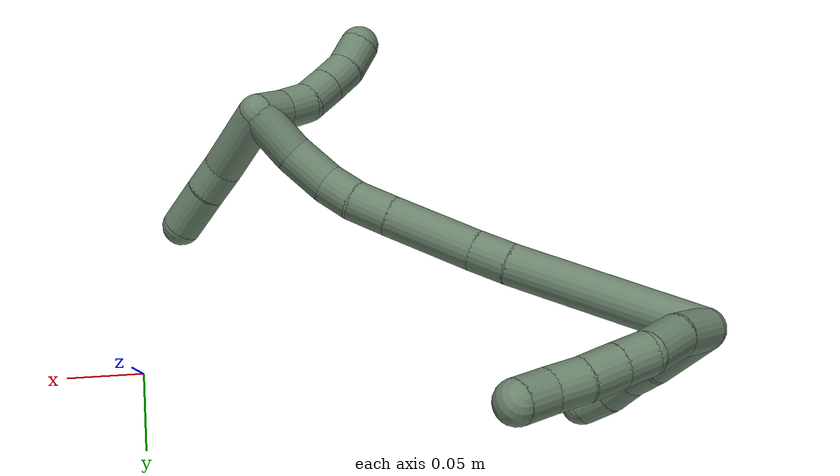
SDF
<sdf version="1.7">
 <world name="default">
  <model name="17">
   <static>0</static>
   <link name="17">
    <collision name="collision-cylinder-e_1_2_8">
     <pose>0.012726 0.006938 0.007169 -0.769051 0.905923 -0.388938</pose>
     <geometry><cylinder><radius>0.0125</radius><length>0.03234</length></cylinder></geometry>
     <surface>
      <friction><ode><mu>1.16</mu><mu2>1.16</mu2><slip1>0</slip1><slip2>0</slip2></ode></friction>
      <contact><ode><kp>1e+06</kp><kd>1</kd><max_vel>0</max_vel><min_depth>0.001</min_depth></ode></contact>
     </surface>
    </collision>
    <visual name="visual-cylinder-e_1_2_8">
     <pose>0.012726 0.006938 0.007169 -0.769051 0.905923 -0.388938</pose>
     <geometry><cylinder><radius>0.0125</radius><length>0.03234</length></cylinder></geometry>
     <material><ambient>0.415686 0.509804 0.423529 1</ambient></material>
    </visual>
    <collision name="collision-cylinder-e_2_8_9">
     <pose>0.037379 0.022709 0.019544 -1.03818 0.860744 -0.513026</pose>
     <geometry><cylinder><radius>0.0125</radius><length>0.031456</length></cylinder></geometry>
     <surface>
      <friction><ode><mu>1.16</mu><mu2>1.16</mu2><slip1>0</slip1><slip2>0</slip2></ode></friction>
      <contact><ode><kp>1e+06</kp><kd>1</kd><max_vel>0</max_vel><min_depth>0.001</min_depth></ode></contact>
     </surface>
    </collision>
    <visual name="visual-cylinder-e_2_8_9">
     <pose>0.037379 0.022709 0.019544 -1.03818 0.860744 -0.513026</pose>
     <geometry><cylinder><radius>0.0125</radius><length>0.031456</length></cylinder></geometry>
     <material><ambient>0.415686 0.509804 0.423529 1</ambient></material>
    </visual>
    <collision name="collision-cylinder-e_3_9_10">
     <pose>0.058567 0.036169 0.025207 -1.47228 1.10542 -1.01927</pose>
     <geometry><cylinder><radius>0.0125</radius><length>0.020727</length></cylinder></geometry>
     <surface>
      <friction><ode><mu>1.16</mu><mu2>1.16</mu2><slip1>0</slip1><slip2>0</slip2></ode></friction>
      <contact><ode><kp>1e+06</kp><kd>1</kd><max_vel>0</max_vel><min_depth>0.001</min_depth></ode></contact>
     </surface>
    </collision>
    <visual name="visual-cylinder-e_3_9_10">
     <pose>0.058567 0.036169 0.025207 -1.47228 1.10542 -1.01927</pose>
     <geometry><cylinder><radius>0.0125</radius><length>0.020727</length></cylinder></geometry>
     <material><ambient>0.415686 0.509804 0.423529 1</ambient></material>
    </visual>
    <collision name="collision-cylinder-e_4_10_11">
     <pose>0.077874 0.046057 0.026269 -1.45641 1.08582 -0.987225</pose>
     <geometry><cylinder><radius>0.0125</radius><length>0.022712</length></cylinder></geometry>
     <surface>
      <friction><ode><mu>1.16</mu><mu2>1.16</mu2><slip1>0</slip1><slip2>0</slip2></ode></friction>
      <contact><ode><kp>1e+06</kp><kd>1</kd><max_vel>0</max_vel><min_depth>0.001</min_depth></ode></contact>
     </surface>
    </collision>
    <visual name="visual-cylinder-e_4_10_11">
     <pose>0.077874 0.046057 0.026269 -1.45641 1.08582 -0.987225</pose>
     <geometry><cylinder><radius>0.0125</radius><length>0.022712</length></cylinder></geometry>
     <material><ambient>0.415686 0.509804 0.423529 1</ambient></material>
    </visual>
    <collision name="collision-cylinder-e_5_11_12">
     <pose>0.097963 0.055435 0.027067 -1.52384 1.18118 -1.13812</pose>
     <geometry><cylinder><radius>0.0125</radius><length>0.021712</length></cylinder></geometry>
     <surface>
      <friction><ode><mu>1.16</mu><mu2>1.16</mu2><slip1>0</slip1><slip2>0</slip2></ode></friction>
      <contact><ode><kp>1e+06</kp><kd>1</kd><max_vel>0</max_vel><min_depth>0.001</min_depth></ode></contact>
     </surface>
    </collision>
    <visual name="visual-cylinder-e_5_11_12">
     <pose>0.097963 0.055435 0.027067 -1.52384 1.18118 -1.13812</pose>
     <geometry><cylinder><radius>0.0125</radius><length>0.021712</length></cylinder></geometry>
     <material><ambient>0.415686 0.509804 0.423529 1</ambient></material>
    </visual>
    <collision name="collision-cylinder-e_6_12_6">
     <pose>0.117284 0.064158 0.029137 -1.18366 1.07884 -0.765166</pose>
     <geometry><cylinder><radius>0.0125</radius><length>0.021053</length></cylinder></geometry>
     <surface>
      <friction><ode><mu>1.16</mu><mu2>1.16</mu2><slip1>0</slip1><slip2>0</slip2></ode></friction>
      <contact><ode><kp>1e+06</kp><kd>1</kd><max_vel>0</max_vel><min_depth>0.001</min_depth></ode></contact>
     </surface>
    </collision>
    <visual name="visual-cylinder-e_6_12_6">
     <pose>0.117284 0.064158 0.029137 -1.18366 1.07884 -0.765166</pose>
     <geometry><cylinder><radius>0.0125</radius><length>0.021053</length></cylinder></geometry>
     <material><ambient>0.415686 0.509804 0.423529 1</ambient></material>
    </visual>
    <collision name="collision-cylinder-e_1_2_13">
     <pose>0.00736 0.002769 -0.018309 -2.99151 0.378343 -2.39324</pose>
     <geometry><cylinder><radius>0.0125</radius><length>0.039852</length></cylinder></geometry>
     <surface>
      <friction><ode><mu>1.16</mu><mu2>1.16</mu2><slip1>0</slip1><slip2>0</slip2></ode></friction>
      <contact><ode><kp>1e+06</kp><kd>1</kd><max_vel>0</max_vel><min_depth>0.001</min_depth></ode></contact>
     </surface>
    </collision>
    <visual name="visual-cylinder-e_1_2_13">
     <pose>0.00736 0.002769 -0.018309 -2.99151 0.378343 -2.39324</pose>
     <geometry><cylinder><radius>0.0125</radius><length>0.039852</length></cylinder></geometry>
     <material><ambient>0.415686 0.509804 0.423529 1</ambient></material>
    </visual>
    <collision name="collision-cylinder-e_2_13_14">
     <pose>0.017763 0.00535 -0.0462 3.12207 0.307349 3.01569</pose>
     <geometry><cylinder><radius>0.0125</radius><length>0.020111</length></cylinder></geometry>
     <surface>
      <friction><ode><mu>1.16</mu><mu2>1.16</mu2><slip1>0</slip1><slip2>0</slip2></ode></friction>
      <contact><ode><kp>1e+06</kp><kd>1</kd><max_vel>0</max_vel><min_depth>0.001</min_depth></ode></contact>
     </surface>
    </collision>
    <visual name="visual-cylinder-e_2_13_14">
     <pose>0.017763 0.00535 -0.0462 3.12207 0.307349 3.01569</pose>
     <geometry><cylinder><radius>0.0125</radius><length>0.020111</length></cylinder></geometry>
     <material><ambient>0.415686 0.509804 0.423529 1</ambient></material>
    </visual>
    <collision name="collision-cylinder-e_3_14_15">
     <pose>0.023643 0.006281 -0.065319 -3.02488 0.287362 -2.37404</pose>
     <geometry><cylinder><radius>0.0125</radius><length>0.020025</length></cylinder></geometry>
     <surface>
      <friction><ode><mu>1.16</mu><mu2>1.16</mu2><slip1>0</slip1><slip2>0</slip2></ode></friction>
      <contact><ode><kp>1e+06</kp><kd>1</kd><max_vel>0</max_vel><min_depth>0.001</min_depth></ode></contact>
     </surface>
    </collision>
    <visual name="visual-cylinder-e_3_14_15">
     <pose>0.023643 0.006281 -0.065319 -3.02488 0.287362 -2.37404</pose>
     <geometry><cylinder><radius>0.0125</radius><length>0.020025</length></cylinder></geometry>
     <material><ambient>0.415686 0.509804 0.423529 1</ambient></material>
    </visual>
    <collision name="collision-cylinder-e_4_15_5">
     <pose>0.031801 0.007994 -0.083309 -3.07135 0.560615 -2.8987</pose>
     <geometry><cylinder><radius>0.0125</radius><length>0.020012</length></cylinder></geometry>
     <surface>
      <friction><ode><mu>1.16</mu><mu2>1.16</mu2><slip1>0</slip1><slip2>0</slip2></ode></friction>
      <contact><ode><kp>1e+06</kp><kd>1</kd><max_vel>0</max_vel><min_depth>0.001</min_depth></ode></contact>
     </surface>
    </collision>
    <visual name="visual-cylinder-e_4_15_5">
     <pose>0.031801 0.007994 -0.083309 -3.07135 0.560615 -2.8987</pose>
     <geometry><cylinder><radius>0.0125</radius><length>0.020012</length></cylinder></geometry>
     <material><ambient>0.415686 0.509804 0.423529 1</ambient></material>
    </visual>
    <collision name="collision-cylinder-e_1_2_16">
     <pose>0.048163 -0.025795 -0.019559 2.21956 0.979009 1.64077</pose>
     <geometry><cylinder><radius>0.0125</radius><length>0.116062</length></cylinder></geometry>
     <surface>
      <friction><ode><mu>1.16</mu><mu2>1.16</mu2><slip1>0</slip1><slip2>0</slip2></ode></friction>
      <contact><ode><kp>1e+06</kp><kd>1</kd><max_vel>0</max_vel><min_depth>0.001</min_depth></ode></contact>
     </surface>
    </collision>
    <visual name="visual-cylinder-e_1_2_16">
     <pose>0.048163 -0.025795 -0.019559 2.21956 0.979009 1.64077</pose>
     <geometry><cylinder><radius>0.0125</radius><length>0.116062</length></cylinder></geometry>
     <material><ambient>0.415686 0.509804 0.423529 1</ambient></material>
    </visual>
    <collision name="collision-cylinder-e_2_16_17">
     <pose>0.105319 -0.057321 -0.043289 2.19991 0.903378 1.52276</pose>
     <geometry><cylinder><radius>0.0125</radius><length>0.022901</length></cylinder></geometry>
     <surface>
      <friction><ode><mu>1.16</mu><mu2>1.16</mu2><slip1>0</slip1><slip2>0</slip2></ode></friction>
      <contact><ode><kp>1e+06</kp><kd>1</kd><max_vel>0</max_vel><min_depth>0.001</min_depth></ode></contact>
     </surface>
    </collision>
    <visual name="visual-cylinder-e_2_16_17">
     <pose>0.105319 -0.057321 -0.043289 2.19991 0.903378 1.52276</pose>
     <geometry><cylinder><radius>0.0125</radius><length>0.022901</length></cylinder></geometry>
     <material><ambient>0.415686 0.509804 0.423529 1</ambient></material>
    </visual>
    <collision name="collision-cylinder-e_3_17_18">
     <pose>0.137319 -0.076411 -0.0551 2.09032 0.981244 1.48849</pose>
     <geometry><cylinder><radius>0.0125</radius><length>0.055358</length></cylinder></geometry>
     <surface>
      <friction><ode><mu>1.16</mu><mu2>1.16</mu2><slip1>0</slip1><slip2>0</slip2></ode></friction>
      <contact><ode><kp>1e+06</kp><kd>1</kd><max_vel>0</max_vel><min_depth>0.001</min_depth></ode></contact>
     </surface>
    </collision>
    <visual name="visual-cylinder-e_3_17_18">
     <pose>0.137319 -0.076411 -0.0551 2.09032 0.981244 1.48849</pose>
     <geometry><cylinder><radius>0.0125</radius><length>0.055358</length></cylinder></geometry>
     <material><ambient>0.415686 0.509804 0.423529 1</ambient></material>
    </visual>
    <collision name="collision-cylinder-e_4_18_19">
     <pose>0.170624 -0.09579 -0.065928 2.05766 0.98636 1.45749</pose>
     <geometry><cylinder><radius>0.0125</radius><length>0.024694</length></cylinder></geometry>
     <surface>
      <friction><ode><mu>1.16</mu><mu2>1.16</mu2><slip1>0</slip1><slip2>0</slip2></ode></friction>
      <contact><ode><kp>1e+06</kp><kd>1</kd><max_vel>0</max_vel><min_depth>0.001</min_depth></ode></contact>
     </surface>
    </collision>
    <visual name="visual-cylinder-e_4_18_19">
     <pose>0.170624 -0.09579 -0.065928 2.05766 0.98636 1.45749</pose>
     <geometry><cylinder><radius>0.0125</radius><length>0.024694</length></cylinder></geometry>
     <material><ambient>0.415686 0.509804 0.423529 1</ambient></material>
    </visual>
    <collision name="collision-cylinder-e_5_19_20">
     <pose>0.188477 -0.10824 -0.071467 1.92153 0.834658 1.13056</pose>
     <geometry><cylinder><radius>0.0125</radius><length>0.020391</length></cylinder></geometry>
     <surface>
      <friction><ode><mu>1.16</mu><mu2>1.16</mu2><slip1>0</slip1><slip2>0</slip2></ode></friction>
      <contact><ode><kp>1e+06</kp><kd>1</kd><max_vel>0</max_vel><min_depth>0.001</min_depth></ode></contact>
     </surface>
    </collision>
    <visual name="visual-cylinder-e_5_19_20">
     <pose>0.188477 -0.10824 -0.071467 1.92153 0.834658 1.13056</pose>
     <geometry><cylinder><radius>0.0125</radius><length>0.020391</length></cylinder></geometry>
     <material><ambient>0.415686 0.509804 0.423529 1</ambient></material>
    </visual>
    <collision name="collision-cylinder-e_6_20_21">
     <pose>0.206881 -0.123907 -0.073605 1.54769 0.865251 0.847794</pose>
     <geometry><cylinder><radius>0.0125</radius><length>0.028503</length></cylinder></geometry>
     <surface>
      <friction><ode><mu>1.16</mu><mu2>1.16</mu2><slip1>0</slip1><slip2>0</slip2></ode></friction>
      <contact><ode><kp>1e+06</kp><kd>1</kd><max_vel>0</max_vel><min_depth>0.001</min_depth></ode></contact>
     </surface>
    </collision>
    <visual name="visual-cylinder-e_6_20_21">
     <pose>0.206881 -0.123907 -0.073605 1.54769 0.865251 0.847794</pose>
     <geometry><cylinder><radius>0.0125</radius><length>0.028503</length></cylinder></geometry>
     <material><ambient>0.415686 0.509804 0.423529 1</ambient></material>
    </visual>
    <collision name="collision-cylinder-e_7_21_1">
     <pose>0.229646 -0.142895 -0.068873 1.13681 0.836996 0.553587</pose>
     <geometry><cylinder><radius>0.0125</radius><length>0.03209</length></cylinder></geometry>
     <surface>
      <friction><ode><mu>1.16</mu><mu2>1.16</mu2><slip1>0</slip1><slip2>0</slip2></ode></friction>
      <contact><ode><kp>1e+06</kp><kd>1</kd><max_vel>0</max_vel><min_depth>0.001</min_depth></ode></contact>
     </surface>
    </collision>
    <visual name="visual-cylinder-e_7_21_1">
     <pose>0.229646 -0.142895 -0.068873 1.13681 0.836996 0.553587</pose>
     <geometry><cylinder><radius>0.0125</radius><length>0.03209</length></cylinder></geometry>
     <material><ambient>0.415686 0.509804 0.423529 1</ambient></material>
    </visual>
    <collision name="collision-cylinder-e_1_1_22">
     <pose>0.23354 -0.157647 -0.067616 2.14848 -0.930913 -1.49503</pose>
     <geometry><cylinder><radius>0.0125</radius><length>0.02</length></cylinder></geometry>
     <surface>
      <friction><ode><mu>1.16</mu><mu2>1.16</mu2><slip1>0</slip1><slip2>0</slip2></ode></friction>
      <contact><ode><kp>1e+06</kp><kd>1</kd><max_vel>0</max_vel><min_depth>0.001</min_depth></ode></contact>
     </surface>
    </collision>
    <visual name="visual-cylinder-e_1_1_22">
     <pose>0.23354 -0.157647 -0.067616 2.14848 -0.930913 -1.49503</pose>
     <geometry><cylinder><radius>0.0125</radius><length>0.02</length></cylinder></geometry>
     <material><ambient>0.415686 0.509804 0.423529 1</ambient></material>
    </visual>
    <collision name="collision-cylinder-e_2_22_23">
     <pose>0.217175 -0.167911 -0.072519 1.87329 -0.986945 -1.26283</pose>
     <geometry><cylinder><radius>0.0125</radius><length>0.02</length></cylinder></geometry>
     <surface>
      <friction><ode><mu>1.16</mu><mu2>1.16</mu2><slip1>0</slip1><slip2>0</slip2></ode></friction>
      <contact><ode><kp>1e+06</kp><kd>1</kd><max_vel>0</max_vel><min_depth>0.001</min_depth></ode></contact>
     </surface>
    </collision>
    <visual name="visual-cylinder-e_2_22_23">
     <pose>0.217175 -0.167911 -0.072519 1.87329 -0.986945 -1.26283</pose>
     <geometry><cylinder><radius>0.0125</radius><length>0.02</length></cylinder></geometry>
     <material><ambient>0.415686 0.509804 0.423529 1</ambient></material>
    </visual>
    <collision name="collision-cylinder-e_3_23_24">
     <pose>0.202506 -0.180875 -0.074977 1.67641 -0.68485 -0.754543</pose>
     <geometry><cylinder><radius>0.0125</radius><length>0.02</length></cylinder></geometry>
     <surface>
      <friction><ode><mu>1.16</mu><mu2>1.16</mu2><slip1>0</slip1><slip2>0</slip2></ode></friction>
      <contact><ode><kp>1e+06</kp><kd>1</kd><max_vel>0</max_vel><min_depth>0.001</min_depth></ode></contact>
     </surface>
    </collision>
    <visual name="visual-cylinder-e_3_23_24">
     <pose>0.202506 -0.180875 -0.074977 1.67641 -0.68485 -0.754543</pose>
     <geometry><cylinder><radius>0.0125</radius><length>0.02</length></cylinder></geometry>
     <material><ambient>0.415686 0.509804 0.423529 1</ambient></material>
    </visual>
    <collision name="collision-cylinder-e_4_24_25">
     <pose>0.189812 -0.196284 -0.075582 1.54336 -0.690401 -0.673112</pose>
     <geometry><cylinder><radius>0.0125</radius><length>0.02</length></cylinder></geometry>
     <surface>
      <friction><ode><mu>1.16</mu><mu2>1.16</mu2><slip1>0</slip1><slip2>0</slip2></ode></friction>
      <contact><ode><kp>1e+06</kp><kd>1</kd><max_vel>0</max_vel><min_depth>0.001</min_depth></ode></contact>
     </surface>
    </collision>
    <visual name="visual-cylinder-e_4_24_25">
     <pose>0.189812 -0.196284 -0.075582 1.54336 -0.690401 -0.673112</pose>
     <geometry><cylinder><radius>0.0125</radius><length>0.02</length></cylinder></geometry>
     <material><ambient>0.415686 0.509804 0.423529 1</ambient></material>
    </visual>
    <collision name="collision-cylinder-e_5_25_4">
     <pose>0.179175 -0.212879 -0.073701 1.38504 -0.441038 -0.367725</pose>
     <geometry><cylinder><radius>0.0125</radius><length>0.02</length></cylinder></geometry>
     <surface>
      <friction><ode><mu>1.16</mu><mu2>1.16</mu2><slip1>0</slip1><slip2>0</slip2></ode></friction>
      <contact><ode><kp>1e+06</kp><kd>1</kd><max_vel>0</max_vel><min_depth>0.001</min_depth></ode></contact>
     </surface>
    </collision>
    <visual name="visual-cylinder-e_5_25_4">
     <pose>0.179175 -0.212879 -0.073701 1.38504 -0.441038 -0.367725</pose>
     <geometry><cylinder><radius>0.0125</radius><length>0.02</length></cylinder></geometry>
     <material><ambient>0.415686 0.509804 0.423529 1</ambient></material>
    </visual>
    <collision name="collision-cylinder-e_1_1_26">
     <pose>0.248248 -0.146621 -0.086462 -2.8756 0.283914 -1.63676</pose>
     <geometry><cylinder><radius>0.0125</radius><length>0.047737</length></cylinder></geometry>
     <surface>
      <friction><ode><mu>1.16</mu><mu2>1.16</mu2><slip1>0</slip1><slip2>0</slip2></ode></friction>
      <contact><ode><kp>1e+06</kp><kd>1</kd><max_vel>0</max_vel><min_depth>0.001</min_depth></ode></contact>
     </surface>
    </collision>
    <visual name="visual-cylinder-e_1_1_26">
     <pose>0.248248 -0.146621 -0.086462 -2.8756 0.283914 -1.63676</pose>
     <geometry><cylinder><radius>0.0125</radius><length>0.047737</length></cylinder></geometry>
     <material><ambient>0.415686 0.509804 0.423529 1</ambient></material>
    </visual>
    <collision name="collision-cylinder-e_2_26_27">
     <pose>0.258908 -0.136537 -0.117333 -2.70766 0.390332 -1.46206</pose>
     <geometry><cylinder><radius>0.0125</radius><length>0.020889</length></cylinder></geometry>
     <surface>
      <friction><ode><mu>1.16</mu><mu2>1.16</mu2><slip1>0</slip1><slip2>0</slip2></ode></friction>
      <contact><ode><kp>1e+06</kp><kd>1</kd><max_vel>0</max_vel><min_depth>0.001</min_depth></ode></contact>
     </surface>
    </collision>
    <visual name="visual-cylinder-e_2_26_27">
     <pose>0.258908 -0.136537 -0.117333 -2.70766 0.390332 -1.46206</pose>
     <geometry><cylinder><radius>0.0125</radius><length>0.020889</length></cylinder></geometry>
     <material><ambient>0.415686 0.509804 0.423529 1</ambient></material>
    </visual>
    <collision name="collision-cylinder-e_3_27_3">
     <pose>0.268298 -0.127062 -0.139787 -2.765 0.352532 -1.50334</pose>
     <geometry><cylinder><radius>0.0125</radius><length>0.031374</length></cylinder></geometry>
     <surface>
      <friction><ode><mu>1.16</mu><mu2>1.16</mu2><slip1>0</slip1><slip2>0</slip2></ode></friction>
      <contact><ode><kp>1e+06</kp><kd>1</kd><max_vel>0</max_vel><min_depth>0.001</min_depth></ode></contact>
     </surface>
    </collision>
    <visual name="visual-cylinder-e_3_27_3">
     <pose>0.268298 -0.127062 -0.139787 -2.765 0.352532 -1.50334</pose>
     <geometry><cylinder><radius>0.0125</radius><length>0.031374</length></cylinder></geometry>
     <material><ambient>0.415686 0.509804 0.423529 1</ambient></material>
    </visual>
    <collision name="collision-sphere-3">
     <pose>0.273714 -0.121648 -0.153478 0 -0 0</pose>
     <geometry><sphere><radius>0.0125</radius></sphere></geometry>
     <surface>
      <friction><ode><mu>1.16</mu><mu2>1.16</mu2><slip1>0</slip1><slip2>0</slip2></ode></friction>
      <contact><ode><kp>1e+06</kp><kd>1</kd><max_vel>0</max_vel><min_depth>0.001</min_depth></ode></contact>
     </surface>
    </collision>
    <visual name="visual-sphere-3">
     <pose>0.273714 -0.121648 -0.153478 0 -0 0</pose>
     <geometry><sphere><radius>0.0125</radius></sphere></geometry>
     <material><ambient>0.415686 0.509804 0.423529 1</ambient></material>
    </visual>
    <collision name="collision-sphere-27">
     <pose>0.262882 -0.132476 -0.126097 0 -0 0</pose>
     <geometry><sphere><radius>0.0125</radius></sphere></geometry>
     <surface>
      <friction><ode><mu>1.16</mu><mu2>1.16</mu2><slip1>0</slip1><slip2>0</slip2></ode></friction>
      <contact><ode><kp>1e+06</kp><kd>1</kd><max_vel>0</max_vel><min_depth>0.001</min_depth></ode></contact>
     </surface>
    </collision>
    <visual name="visual-sphere-27">
     <pose>0.262882 -0.132476 -0.126097 0 -0 0</pose>
     <geometry><sphere><radius>0.0125</radius></sphere></geometry>
     <material><ambient>0.415686 0.509804 0.423529 1</ambient></material>
    </visual>
    <collision name="collision-sphere-26">
     <pose>0.254933 -0.140598 -0.108569 0 -0 0</pose>
     <geometry><sphere><radius>0.0125</radius></sphere></geometry>
     <surface>
      <friction><ode><mu>1.16</mu><mu2>1.16</mu2><slip1>0</slip1><slip2>0</slip2></ode></friction>
      <contact><ode><kp>1e+06</kp><kd>1</kd><max_vel>0</max_vel><min_depth>0.001</min_depth></ode></contact>
     </surface>
    </collision>
    <visual name="visual-sphere-26">
     <pose>0.254933 -0.140598 -0.108569 0 -0 0</pose>
     <geometry><sphere><radius>0.0125</radius></sphere></geometry>
     <material><ambient>0.415686 0.509804 0.423529 1</ambient></material>
    </visual>
    <collision name="collision-sphere-4">
     <pose>0.174906 -0.221766 -0.07203 0 -0 0</pose>
     <geometry><sphere><radius>0.0125</radius></sphere></geometry>
     <surface>
      <friction><ode><mu>1.16</mu><mu2>1.16</mu2><slip1>0</slip1><slip2>0</slip2></ode></friction>
      <contact><ode><kp>1e+06</kp><kd>1</kd><max_vel>0</max_vel><min_depth>0.001</min_depth></ode></contact>
     </surface>
    </collision>
    <visual name="visual-sphere-4">
     <pose>0.174906 -0.221766 -0.07203 0 -0 0</pose>
     <geometry><sphere><radius>0.0125</radius></sphere></geometry>
     <material><ambient>0.415686 0.509804 0.423529 1</ambient></material>
    </visual>
    <collision name="collision-sphere-25">
     <pose>0.183443 -0.203991 -0.075371 0 -0 0</pose>
     <geometry><sphere><radius>0.0125</radius></sphere></geometry>
     <surface>
      <friction><ode><mu>1.16</mu><mu2>1.16</mu2><slip1>0</slip1><slip2>0</slip2></ode></friction>
      <contact><ode><kp>1e+06</kp><kd>1</kd><max_vel>0</max_vel><min_depth>0.001</min_depth></ode></contact>
     </surface>
    </collision>
    <visual name="visual-sphere-25">
     <pose>0.183443 -0.203991 -0.075371 0 -0 0</pose>
     <geometry><sphere><radius>0.0125</radius></sphere></geometry>
     <material><ambient>0.415686 0.509804 0.423529 1</ambient></material>
    </visual>
    <collision name="collision-sphere-24">
     <pose>0.19618 -0.188577 -0.075794 0 -0 0</pose>
     <geometry><sphere><radius>0.0125</radius></sphere></geometry>
     <surface>
      <friction><ode><mu>1.16</mu><mu2>1.16</mu2><slip1>0</slip1><slip2>0</slip2></ode></friction>
      <contact><ode><kp>1e+06</kp><kd>1</kd><max_vel>0</max_vel><min_depth>0.001</min_depth></ode></contact>
     </surface>
    </collision>
    <visual name="visual-sphere-24">
     <pose>0.19618 -0.188577 -0.075794 0 -0 0</pose>
     <geometry><sphere><radius>0.0125</radius></sphere></geometry>
     <material><ambient>0.415686 0.509804 0.423529 1</ambient></material>
    </visual>
    <collision name="collision-sphere-23">
     <pose>0.208831 -0.173173 -0.074161 0 -0 0</pose>
     <geometry><sphere><radius>0.0125</radius></sphere></geometry>
     <surface>
      <friction><ode><mu>1.16</mu><mu2>1.16</mu2><slip1>0</slip1><slip2>0</slip2></ode></friction>
      <contact><ode><kp>1e+06</kp><kd>1</kd><max_vel>0</max_vel><min_depth>0.001</min_depth></ode></contact>
     </surface>
    </collision>
    <visual name="visual-sphere-23">
     <pose>0.208831 -0.173173 -0.074161 0 -0 0</pose>
     <geometry><sphere><radius>0.0125</radius></sphere></geometry>
     <material><ambient>0.415686 0.509804 0.423529 1</ambient></material>
    </visual>
    <collision name="collision-sphere-22">
     <pose>0.225518 -0.162649 -0.070877 0 -0 0</pose>
     <geometry><sphere><radius>0.0125</radius></sphere></geometry>
     <surface>
      <friction><ode><mu>1.16</mu><mu2>1.16</mu2><slip1>0</slip1><slip2>0</slip2></ode></friction>
      <contact><ode><kp>1e+06</kp><kd>1</kd><max_vel>0</max_vel><min_depth>0.001</min_depth></ode></contact>
     </surface>
    </collision>
    <visual name="visual-sphere-22">
     <pose>0.225518 -0.162649 -0.070877 0 -0 0</pose>
     <geometry><sphere><radius>0.0125</radius></sphere></geometry>
     <material><ambient>0.415686 0.509804 0.423529 1</ambient></material>
    </visual>
    <collision name="collision-sphere-1">
     <pose>0.241562 -0.152645 -0.064355 0 -0 0</pose>
     <geometry><sphere><radius>0.0125</radius></sphere></geometry>
     <surface>
      <friction><ode><mu>1.16</mu><mu2>1.16</mu2><slip1>0</slip1><slip2>0</slip2></ode></friction>
      <contact><ode><kp>1e+06</kp><kd>1</kd><max_vel>0</max_vel><min_depth>0.001</min_depth></ode></contact>
     </surface>
    </collision>
    <visual name="visual-sphere-1">
     <pose>0.241562 -0.152645 -0.064355 0 -0 0</pose>
     <geometry><sphere><radius>0.0125</radius></sphere></geometry>
     <material><ambient>0.415686 0.509804 0.423529 1</ambient></material>
    </visual>
    <collision name="collision-sphere-21">
     <pose>0.21773 -0.133146 -0.073392 0 -0 0</pose>
     <geometry><sphere><radius>0.0125</radius></sphere></geometry>
     <surface>
      <friction><ode><mu>1.16</mu><mu2>1.16</mu2><slip1>0</slip1><slip2>0</slip2></ode></friction>
      <contact><ode><kp>1e+06</kp><kd>1</kd><max_vel>0</max_vel><min_depth>0.001</min_depth></ode></contact>
     </surface>
    </collision>
    <visual name="visual-sphere-21">
     <pose>0.21773 -0.133146 -0.073392 0 -0 0</pose>
     <geometry><sphere><radius>0.0125</radius></sphere></geometry>
     <material><ambient>0.415686 0.509804 0.423529 1</ambient></material>
    </visual>
    <collision name="collision-sphere-12">
     <pose>0.108006 0.059554 0.02726 0 -0 0</pose>
     <geometry><sphere><radius>0.0125</radius></sphere></geometry>
     <surface>
      <friction><ode><mu>1.16</mu><mu2>1.16</mu2><slip1>0</slip1><slip2>0</slip2></ode></friction>
      <contact><ode><kp>1e+06</kp><kd>1</kd><max_vel>0</max_vel><min_depth>0.001</min_depth></ode></contact>
     </surface>
    </collision>
    <visual name="visual-sphere-12">
     <pose>0.108006 0.059554 0.02726 0 -0 0</pose>
     <geometry><sphere><radius>0.0125</radius></sphere></geometry>
     <material><ambient>0.415686 0.509804 0.423529 1</ambient></material>
    </visual>
    <collision name="collision-sphere-11">
     <pose>0.087921 0.051316 0.026873 0 -0 0</pose>
     <geometry><sphere><radius>0.0125</radius></sphere></geometry>
     <surface>
      <friction><ode><mu>1.16</mu><mu2>1.16</mu2><slip1>0</slip1><slip2>0</slip2></ode></friction>
      <contact><ode><kp>1e+06</kp><kd>1</kd><max_vel>0</max_vel><min_depth>0.001</min_depth></ode></contact>
     </surface>
    </collision>
    <visual name="visual-sphere-11">
     <pose>0.087921 0.051316 0.026873 0 -0 0</pose>
     <geometry><sphere><radius>0.0125</radius></sphere></geometry>
     <material><ambient>0.415686 0.509804 0.423529 1</ambient></material>
    </visual>
    <collision name="collision-sphere-10">
     <pose>0.067828 0.040797 0.025665 0 -0 0</pose>
     <geometry><sphere><radius>0.0125</radius></sphere></geometry>
     <surface>
      <friction><ode><mu>1.16</mu><mu2>1.16</mu2><slip1>0</slip1><slip2>0</slip2></ode></friction>
      <contact><ode><kp>1e+06</kp><kd>1</kd><max_vel>0</max_vel><min_depth>0.001</min_depth></ode></contact>
     </surface>
    </collision>
    <visual name="visual-sphere-10">
     <pose>0.067828 0.040797 0.025665 0 -0 0</pose>
     <geometry><sphere><radius>0.0125</radius></sphere></geometry>
     <material><ambient>0.415686 0.509804 0.423529 1</ambient></material>
    </visual>
    <collision name="collision-sphere-9">
     <pose>0.049305 0.031541 0.02475 0 -0 0</pose>
     <geometry><sphere><radius>0.0125</radius></sphere></geometry>
     <surface>
      <friction><ode><mu>1.16</mu><mu2>1.16</mu2><slip1>0</slip1><slip2>0</slip2></ode></friction>
      <contact><ode><kp>1e+06</kp><kd>1</kd><max_vel>0</max_vel><min_depth>0.001</min_depth></ode></contact>
     </surface>
    </collision>
    <visual name="visual-sphere-9">
     <pose>0.049305 0.031541 0.02475 0 -0 0</pose>
     <geometry><sphere><radius>0.0125</radius></sphere></geometry>
     <material><ambient>0.415686 0.509804 0.423529 1</ambient></material>
    </visual>
    <collision name="collision-sphere-2">
     <geometry><sphere><radius>0.0125</radius></sphere></geometry>
     <surface>
      <friction><ode><mu>1.16</mu><mu2>1.16</mu2><slip1>0</slip1><slip2>0</slip2></ode></friction>
      <contact><ode><kp>1e+06</kp><kd>1</kd><max_vel>0</max_vel><min_depth>0.001</min_depth></ode></contact>
     </surface>
    </collision>
    <visual name="visual-sphere-2">
     <geometry><sphere><radius>0.0125</radius></sphere></geometry>
     <material><ambient>0.415686 0.509804 0.423529 1</ambient></material>
    </visual>
    <collision name="collision-sphere-19">
     <pose>0.180922 -0.101811 -0.069115 0 -0 0</pose>
     <geometry><sphere><radius>0.0125</radius></sphere></geometry>
     <surface>
      <friction><ode><mu>1.16</mu><mu2>1.16</mu2><slip1>0</slip1><slip2>0</slip2></ode></friction>
      <contact><ode><kp>1e+06</kp><kd>1</kd><max_vel>0</max_vel><min_depth>0.001</min_depth></ode></contact>
     </surface>
    </collision>
    <visual name="visual-sphere-19">
     <pose>0.180922 -0.101811 -0.069115 0 -0 0</pose>
     <geometry><sphere><radius>0.0125</radius></sphere></geometry>
     <material><ambient>0.415686 0.509804 0.423529 1</ambient></material>
    </visual>
    <collision name="collision-sphere-8">
     <pose>0.025452 0.013876 0.014337 0 -0 0</pose>
     <geometry><sphere><radius>0.0125</radius></sphere></geometry>
     <surface>
      <friction><ode><mu>1.16</mu><mu2>1.16</mu2><slip1>0</slip1><slip2>0</slip2></ode></friction>
      <contact><ode><kp>1e+06</kp><kd>1</kd><max_vel>0</max_vel><min_depth>0.001</min_depth></ode></contact>
     </surface>
    </collision>
    <visual name="visual-sphere-8">
     <pose>0.025452 0.013876 0.014337 0 -0 0</pose>
     <geometry><sphere><radius>0.0125</radius></sphere></geometry>
     <material><ambient>0.415686 0.509804 0.423529 1</ambient></material>
    </visual>
    <collision name="collision-sphere-6">
     <pose>0.126562 0.068762 0.031015 0 -0 0</pose>
     <geometry><sphere><radius>0.0125</radius></sphere></geometry>
     <surface>
      <friction><ode><mu>1.16</mu><mu2>1.16</mu2><slip1>0</slip1><slip2>0</slip2></ode></friction>
      <contact><ode><kp>1e+06</kp><kd>1</kd><max_vel>0</max_vel><min_depth>0.001</min_depth></ode></contact>
     </surface>
    </collision>
    <visual name="visual-sphere-6">
     <pose>0.126562 0.068762 0.031015 0 -0 0</pose>
     <geometry><sphere><radius>0.0125</radius></sphere></geometry>
     <material><ambient>0.415686 0.509804 0.423529 1</ambient></material>
    </visual>
    <collision name="collision-sphere-13">
     <pose>0.014721 0.005537 -0.036617 0 -0 0</pose>
     <geometry><sphere><radius>0.0125</radius></sphere></geometry>
     <surface>
      <friction><ode><mu>1.16</mu><mu2>1.16</mu2><slip1>0</slip1><slip2>0</slip2></ode></friction>
      <contact><ode><kp>1e+06</kp><kd>1</kd><max_vel>0</max_vel><min_depth>0.001</min_depth></ode></contact>
     </surface>
    </collision>
    <visual name="visual-sphere-13">
     <pose>0.014721 0.005537 -0.036617 0 -0 0</pose>
     <geometry><sphere><radius>0.0125</radius></sphere></geometry>
     <material><ambient>0.415686 0.509804 0.423529 1</ambient></material>
    </visual>
    <collision name="collision-sphere-14">
     <pose>0.020805 0.005163 -0.055782 0 -0 0</pose>
     <geometry><sphere><radius>0.0125</radius></sphere></geometry>
     <surface>
      <friction><ode><mu>1.16</mu><mu2>1.16</mu2><slip1>0</slip1><slip2>0</slip2></ode></friction>
      <contact><ode><kp>1e+06</kp><kd>1</kd><max_vel>0</max_vel><min_depth>0.001</min_depth></ode></contact>
     </surface>
    </collision>
    <visual name="visual-sphere-14">
     <pose>0.020805 0.005163 -0.055782 0 -0 0</pose>
     <geometry><sphere><radius>0.0125</radius></sphere></geometry>
     <material><ambient>0.415686 0.509804 0.423529 1</ambient></material>
    </visual>
    <collision name="collision-sphere-15">
     <pose>0.02648 0.007399 -0.074855 0 -0 0</pose>
     <geometry><sphere><radius>0.0125</radius></sphere></geometry>
     <surface>
      <friction><ode><mu>1.16</mu><mu2>1.16</mu2><slip1>0</slip1><slip2>0</slip2></ode></friction>
      <contact><ode><kp>1e+06</kp><kd>1</kd><max_vel>0</max_vel><min_depth>0.001</min_depth></ode></contact>
     </surface>
    </collision>
    <visual name="visual-sphere-15">
     <pose>0.02648 0.007399 -0.074855 0 -0 0</pose>
     <geometry><sphere><radius>0.0125</radius></sphere></geometry>
     <material><ambient>0.415686 0.509804 0.423529 1</ambient></material>
    </visual>
    <collision name="collision-sphere-5">
     <pose>0.037121 0.008589 -0.091762 0 -0 0</pose>
     <geometry><sphere><radius>0.0125</radius></sphere></geometry>
     <surface>
      <friction><ode><mu>1.16</mu><mu2>1.16</mu2><slip1>0</slip1><slip2>0</slip2></ode></friction>
      <contact><ode><kp>1e+06</kp><kd>1</kd><max_vel>0</max_vel><min_depth>0.001</min_depth></ode></contact>
     </surface>
    </collision>
    <visual name="visual-sphere-5">
     <pose>0.037121 0.008589 -0.091762 0 -0 0</pose>
     <geometry><sphere><radius>0.0125</radius></sphere></geometry>
     <material><ambient>0.415686 0.509804 0.423529 1</ambient></material>
    </visual>
    <collision name="collision-sphere-16">
     <pose>0.096325 -0.051591 -0.039119 0 -0 0</pose>
     <geometry><sphere><radius>0.0125</radius></sphere></geometry>
     <surface>
      <friction><ode><mu>1.16</mu><mu2>1.16</mu2><slip1>0</slip1><slip2>0</slip2></ode></friction>
      <contact><ode><kp>1e+06</kp><kd>1</kd><max_vel>0</max_vel><min_depth>0.001</min_depth></ode></contact>
     </surface>
    </collision>
    <visual name="visual-sphere-16">
     <pose>0.096325 -0.051591 -0.039119 0 -0 0</pose>
     <geometry><sphere><radius>0.0125</radius></sphere></geometry>
     <material><ambient>0.415686 0.509804 0.423529 1</ambient></material>
    </visual>
    <collision name="collision-sphere-17">
     <pose>0.114313 -0.063052 -0.04746 0 -0 0</pose>
     <geometry><sphere><radius>0.0125</radius></sphere></geometry>
     <surface>
      <friction><ode><mu>1.16</mu><mu2>1.16</mu2><slip1>0</slip1><slip2>0</slip2></ode></friction>
      <contact><ode><kp>1e+06</kp><kd>1</kd><max_vel>0</max_vel><min_depth>0.001</min_depth></ode></contact>
     </surface>
    </collision>
    <visual name="visual-sphere-17">
     <pose>0.114313 -0.063052 -0.04746 0 -0 0</pose>
     <geometry><sphere><radius>0.0125</radius></sphere></geometry>
     <material><ambient>0.415686 0.509804 0.423529 1</ambient></material>
    </visual>
    <collision name="collision-sphere-18">
     <pose>0.160326 -0.08977 -0.06274 0 -0 0</pose>
     <geometry><sphere><radius>0.0125</radius></sphere></geometry>
     <surface>
      <friction><ode><mu>1.16</mu><mu2>1.16</mu2><slip1>0</slip1><slip2>0</slip2></ode></friction>
      <contact><ode><kp>1e+06</kp><kd>1</kd><max_vel>0</max_vel><min_depth>0.001</min_depth></ode></contact>
     </surface>
    </collision>
    <visual name="visual-sphere-18">
     <pose>0.160326 -0.08977 -0.06274 0 -0 0</pose>
     <geometry><sphere><radius>0.0125</radius></sphere></geometry>
     <material><ambient>0.415686 0.509804 0.423529 1</ambient></material>
    </visual>
    <collision name="collision-sphere-20">
     <pose>0.196032 -0.114669 -0.073819 0 -0 0</pose>
     <geometry><sphere><radius>0.0125</radius></sphere></geometry>
     <surface>
      <friction><ode><mu>1.16</mu><mu2>1.16</mu2><slip1>0</slip1><slip2>0</slip2></ode></friction>
      <contact><ode><kp>1e+06</kp><kd>1</kd><max_vel>0</max_vel><min_depth>0.001</min_depth></ode></contact>
     </surface>
    </collision>
    <visual name="visual-sphere-20">
     <pose>0.196032 -0.114669 -0.073819 0 -0 0</pose>
     <geometry><sphere><radius>0.0125</radius></sphere></geometry>
     <material><ambient>0.415686 0.509804 0.423529 1</ambient></material>
    </visual>
    <inertial>
     <pose>0.125298 -0.063445 -0.044566 0 -0 0</pose>
     <mass>0.75</mass>
     <inertia>
      <ixx>9.1e-05</ixx>
      <ixy>0</ixy>
      <ixz>0</ixz>
      <iyy>0.000193</iyy>
      <iyz>0</iyz>
      <izz>-0.000101</izz>
     </inertia>
    </inertial>
   </link>
   <pose>-0.332842 0.006366 0.147921 0.37095 -0.240601 -0.12936</pose>
  </model>
 </world>
</sdf>
